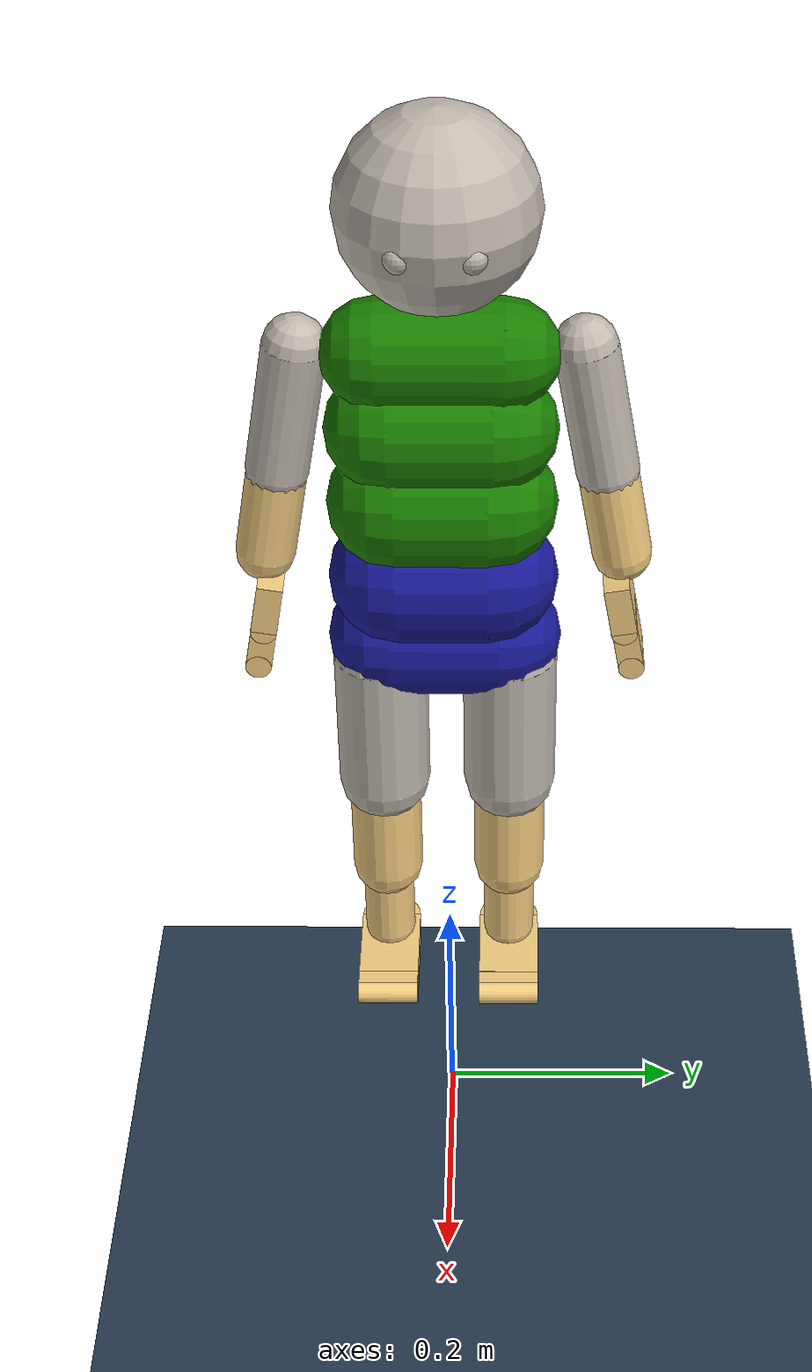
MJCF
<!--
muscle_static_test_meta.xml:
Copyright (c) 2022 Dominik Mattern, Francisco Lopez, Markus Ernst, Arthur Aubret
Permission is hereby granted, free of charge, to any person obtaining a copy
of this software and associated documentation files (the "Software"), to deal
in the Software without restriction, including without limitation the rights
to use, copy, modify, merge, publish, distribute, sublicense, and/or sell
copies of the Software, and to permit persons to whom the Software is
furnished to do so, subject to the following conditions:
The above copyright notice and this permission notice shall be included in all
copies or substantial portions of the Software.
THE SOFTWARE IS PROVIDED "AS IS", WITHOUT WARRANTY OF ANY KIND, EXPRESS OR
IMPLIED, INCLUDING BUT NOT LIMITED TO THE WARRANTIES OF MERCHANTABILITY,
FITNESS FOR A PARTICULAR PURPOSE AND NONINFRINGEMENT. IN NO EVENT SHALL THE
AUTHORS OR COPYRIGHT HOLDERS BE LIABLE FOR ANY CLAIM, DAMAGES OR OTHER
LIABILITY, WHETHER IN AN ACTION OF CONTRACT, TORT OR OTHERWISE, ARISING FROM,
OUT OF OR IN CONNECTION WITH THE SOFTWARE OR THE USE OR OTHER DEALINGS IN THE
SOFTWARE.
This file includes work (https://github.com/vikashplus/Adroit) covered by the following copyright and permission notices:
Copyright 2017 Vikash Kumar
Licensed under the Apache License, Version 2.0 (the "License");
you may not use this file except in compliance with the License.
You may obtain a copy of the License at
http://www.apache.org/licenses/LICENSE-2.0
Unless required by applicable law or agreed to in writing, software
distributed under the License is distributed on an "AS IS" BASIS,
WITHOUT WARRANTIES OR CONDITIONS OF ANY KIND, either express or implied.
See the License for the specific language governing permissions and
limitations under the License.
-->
<mujoco model="MIMo">

    <compiler inertiafromgeom="true" angle="degree"/>

    <option timestep="0.005" gravity="0 0 0" iterations="50" tolerance="1e-10" solver="Newton" jacobian="dense" cone="elliptic" impratio="1.0"/>

    <size nconmax="1000" njmax="5000" nstack="10000000" />

    <visual>
        <map force="0.1" zfar="30" znear="0.005"/>
        <rgba haze="0.15 0.25 0.35 1"/>
        <quality shadowsize="4096"/>
        <global offwidth="800" offheight="800"/>
    </visual>

    <default>
        <geom material="matgeom" condim="3" solimp="0.95 0.99 0.001 0.5 1" solref="0.005 1"/>
    </default>

    <asset>
        <texture type="skybox" builtin="gradient" rgb1="0.3 0.5 0.7" rgb2="0 0 0" width="512" height="512"/>

        <texture name="texplane" type="2d" builtin="checker" rgb1=".2 .3 .4" rgb2=".1 0.15 0.2" width="512" height="512" mark="cross" markrgb=".8 .8 .8"/>

        <texture name="texgeom" type="cube" builtin="flat" mark="cross" width="127" height="1278"
            rgb1="0.8 0.6 0.4" rgb2="0.8 0.6 0.4" markrgb="1 1 1" random="0.01"/>

        <material name="matplane" reflectance="0.3" texture="texplane" texrepeat="1 1" texuniform="true"/>

        <material name="matgeom" texture="texgeom" texuniform="true" rgba="0.8 0.6 .4 1"/>

		<material name="matmocap" texture="texgeom" texuniform="true" rgba="0.5 0 0.5 0.5"/>

    </asset>

	<!-- Import everything except the kinematic tree -->
	<include file="muscle_static_test_meta.xml"></include>

    <worldbody>
        <geom name="floor" pos="0 0 0" size="0 0 .25" type="plane" material="matplane" condim="3"/>

        <light directional="false" diffuse=".4 .4 .4" specular="0 0 0" pos="0 0 10" dir="0 0 -1" castshadow="false"/>
        <light mode="targetbodycom" target="upper_body" directional="false" diffuse=".8 .8 .8" specular="0.3 0.3 0.3" pos="0 0 5.0" dir="0 0 -1"/>

		<!-- The location and orientation of the base model can be set using this body -->
		<body name="mimo_location" pos="0 0 .5" euler="0 0 0">
			<freejoint/>
			<include file="mimo/MIMo_model.xml"></include> <!-- Import the actual model-->
		</body>

    </worldbody>

    <equality>
		<weld body1="hip"/>
	</equality>

</mujoco>

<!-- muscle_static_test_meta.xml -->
<mujoco model="MIMo">

	<size nuser_actuator="3" />

	<default>
		<default class="mimo">
        	<joint limited="true" damping=".1" stiffness=".1" armature="0.001" solimplimit="0.98 0.99 0.001 .5 1" solreflimit="0.02 1"/>
        	<geom condim="3" material="skin" friction="1 0.005 0.0002" solimp="0.95 0.99 0.001 0.5 1" solref="0.005 1"/>
        	<motor ctrlrange="-1 1" ctrllimited="true" forcelimited="true"/>
		</default>
    </default>

    <asset>
		<texture name="tex_head_default" type="cube" fileright="tex/head_front.png" fileleft="tex/head_back.png" fileup="tex/head_left.png" filedown="tex/head_right.png" filefront="tex/head_top.png" rgb1="0.95 .8 .5"/>
		<texture name="tex_head_happy" type="cube" fileright="tex/head_front_happy.png" fileleft="tex/head_back.png" fileup="tex/head_left.png" filedown="tex/head_right.png" filefront="tex/head_top.png" rgb1="0.95 .8 .5"/>
		<texture name="tex_head_sad" type="cube" fileright="tex/head_front_sad.png" fileleft="tex/head_back.png" fileup="tex/head_left.png" filedown="tex/head_right.png" filefront="tex/head_top.png" rgb1="0.95 .8 .5"/>
		<texture name="tex_head_surprised" type="cube" fileright="tex/head_front_surprised.png" fileleft="tex/head_back.png" fileup="tex/head_left.png" filedown="tex/head_right.png" filefront="tex/head_top.png" rgb1="0.95 .8 .5"/>
		<texture name="tex_head_angry" type="cube" fileright="tex/head_front_angry.png" fileleft="tex/head_back.png" fileup="tex/head_left.png" filedown="tex/head_right.png" filefront="tex/head_top.png" rgb1="0.95 .8 .5"/>
		<texture name="tex_head_disgusted" type="cube" fileright="tex/head_front_disgusted.png" fileleft="tex/head_back.png" fileup="tex/head_left.png" filedown="tex/head_right.png" filefront="tex/head_top.png" rgb1="0.95 .8 .5"/>
		<texture name="tex_head_scared" type="cube" fileright="tex/head_front_scared.png" fileleft="tex/head_back.png" fileup="tex/head_left.png" filedown="tex/head_right.png" filefront="tex/head_top.png" rgb1="0.95 .8 .5"/>
		<texture name="tex_top_sleeve" type="cube" fileright="tex/sleeve_right.png" fileleft="tex/sleeve_left.png" fileup="tex/sleeve_up.png" filedown="tex/sleeve_down.png" filefront="tex/sleeve_front.png" fileback="tex/sleeve_back.png" rgb1="0.95 .8 .5"/>
		<texture name="tex_pants_leg" type="cube" fileright="tex/leg_right.png" fileleft="tex/leg_left.png" fileup="tex/leg_up.png" filedown="tex/leg_down.png" filefront="tex/leg_front.png" fileback="tex/leg_back.png" rgb1="0.95 .8 .5"/>
		<texture name="tex_eye_left" type="cube" fileright="tex/eye_pupil_left.png" rgb1="1 1 1"/>
		<texture name="tex_eye_right" type="cube" fileright="tex/eye_pupil_right.png" rgb1="1 1 1"/>

		<material name="skin" rgba="0.95 0.8 0.5 1" specular=".15" shininess=".7"/>
		<material name="buttons" rgba=".05 .05 .05 1" specular=".9" shininess=".9"/>
		<material name="head" texture="tex_head_default" texuniform="true" specular=".0" shininess=".0"/>
		<material name="top_up" rgba=".1 .5 0.0 1" specular=".0" shininess=".0"/>
		<material name="top_middle" rgba=".1 .5 0.0 1" specular=".0" shininess=".0"/>
		<material name="top_down" rgba=".1 .5 0.0 1" specular=".0" shininess=".0"/>
		<material name="top_sleeve" texture="tex_top_sleeve" texuniform="true" specular=".0" shininess=".0"/>
		<material name="pants_up" rgba="0.1 0.1 0.6 1" specular=".0" shininess=".0"/>
		<material name="pants_down" rgba="0.1 0.1 0.6 1" specular=".0" shininess=".0"/>
		<material name="pants_leg" texture="tex_pants_leg" texuniform="true" specular=".0" shininess=".0"/>
		<material name="eye_left" texture="tex_eye_left" texuniform="true" specular=".0" shininess=".0"/>
		<material name="eye_right" texture="tex_eye_right" texuniform="true" specular=".0" shininess=".0"/>
    </asset>

	<!-- Internal contacts should not have friction to reduce "getting stuck" on ourselves-->
	<contact>
		<pair geom1="lb" geom2="ub1" condim="1"/>
		<exclude body1="left_eye" body2="upper_body"/>
		<exclude body1="right_eye" body2="upper_body"/>
	</contact>

	<tendon>
		<fixed class="mimo" name="hip_bend" limited="true" range="-.01 .01">
			<joint joint="robot:hip_bend1" coef="1"/>
			<joint joint="robot:hip_bend2" coef="-1"/>
		</fixed>
		<fixed class="mimo" name="hip_rotation" limited="true" range="-.01 .01">
			<joint joint="robot:hip_rot1" coef="1"/>
			<joint joint="robot:hip_rot2" coef="-1"/>
		</fixed>
		<fixed class="mimo" name="hip_lean" limited="true" range="-.01 .01">
			<joint joint="robot:hip_lean1" coef="1"/>
			<joint joint="robot:hip_lean2" coef="-.5"/>
		</fixed>
		<fixed class="mimo" name="head_limits1" limited="true" range="-2.1 2.1">
			<joint joint="robot:head_swivel" coef="1"/>
			<joint joint="robot:head_tilt_side" coef="1"/>
		</fixed>
		<fixed class="mimo" name="head_limits2" limited="true" range="-2.1 2.1">
			<joint joint="robot:head_tilt" coef="1"/>
			<joint joint="robot:head_tilt_side" coef="1"/>
		</fixed>
		<fixed class="mimo" name="head_limits3" limited="true" range="-2.1 2.1">
			<joint joint="robot:head_swivel" coef="1"/>
			<joint joint="robot:head_tilt" coef="1"/>
		</fixed>
		<fixed class="mimo" name="head_limits1_sym" limited="true" range="-2.1 2.1">
			<joint joint="robot:head_swivel" coef="1"/>
			<joint joint="robot:head_tilt_side" coef="-1"/>
		</fixed>
		<fixed class="mimo" name="head_limits2_sym" limited="true" range="-2.1 2.1">
			<joint joint="robot:head_tilt" coef="1"/>
			<joint joint="robot:head_tilt_side" coef="-1"/>
		</fixed>
		<fixed class="mimo" name="head_limits3_sym" limited="true" range="-2.1 2.1">
			<joint joint="robot:head_swivel" coef="1"/>
			<joint joint="robot:head_tilt" coef="-1"/>
		</fixed>
	</tendon>

	<sensor>
		<accelerometer name="vestibular_acc" site="vestibular"/>
		<gyro name="vestibular_gyro" site="vestibular"/>

		<torque name="proprio:neck" site="torque_neck"/>
		<torque name="proprio:left_eye" site="torque_left_eye"/>
		<torque name="proprio:right_eye" site="torque_right_eye"/>

		<torque name="proprio:trunk_upper" site="torque_ub"/>
		<torque name="proprio:trunk_lower" site="torque_lb"/>

		<torque name="proprio:right_shoulder" site="torque_right_shoulder"/>
		<torque name="proprio:right_elbow" site="torque_right_elbow"/>
		<torque name="proprio:right_wrist" site="torque_right_wrist"/>
		<torque name="proprio:right_fingers" site="torque_right_fingers"/>

		<torque name="proprio:left_shoulder" site="torque_left_shoulder"/>
		<torque name="proprio:left_elbow" site="torque_left_elbow"/>
		<torque name="proprio:left_wrist" site="torque_left_wrist"/>
		<torque name="proprio:left_fingers" site="torque_left_fingers"/>

		<torque name="proprio:right_hip" site="torque_right_hip"/>
		<torque name="proprio:right_knee" site="torque_right_knee"/>
		<torque name="proprio:right_ankle" site="torque_right_ankle"/>
		<torque name="proprio:right_toes" site="torque_right_toes"/>

		<torque name="proprio:left_hip" site="torque_left_hip"/>
		<torque name="proprio:left_knee" site="torque_left_knee"/>
		<torque name="proprio:left_ankle" site="torque_left_ankle"/>
		<torque name="proprio:left_toes" site="torque_left_toes"/>
	</sensor>

	<actuator>
		<motor class="mimo"	name="act:hip_bend" 						joint="robot:hip_bend1" 				gear="10.58" 		forcerange="-1 .765"	user=".8574 32.93 22.97"/>
		<motor class="mimo"	name="act:hip_twist" 						joint="robot:hip_rot1" 					gear="3.63" 		forcerange="-1 1"		user="1.699 8.136 8.136"/>
		<motor class="mimo"	name="act:hip_lean" 						joint="robot:hip_lean1" 				gear="7.25" 		forcerange="-1 1"		user="1.278 1.264 1.264"/>

		<motor class="mimo"	name="act:head_swivel" 						joint="robot:head_swivel" 				gear="1.8" 			forcerange="-1 1"		user=".6665 24.87 24.87"/>
		<motor class="mimo"	name="act:head_tilt" 						joint="robot:head_tilt" 				gear="3.3" 			forcerange="-1 .55"		user=".9338 31.39 16.86"/>
		<motor class="mimo"	name="act:head_tilt_side" 					joint="robot:head_tilt_side" 			gear="1.8" 			forcerange="-1 1"		user="1.068 15.69 15.69"/>

		<motor class="mimo" name="act:left_eye_horizontal" 				joint="robot:left_eye_horizontal" 		gear=".0054" 		forcerange="-1 1"		user="5.110 .03025 .03025"/>
		<motor class="mimo" name="act:left_eye_vertical" 				joint="robot:left_eye_vertical" 		gear=".0054" 		forcerange="-1 1"		user="6.179 .02619 .02771"/>
		<motor class="mimo" name="act:left_eye_torsional" 				joint="robot:left_eye_torsional" 		gear=".0037" 		forcerange="-1 1"		user="25.03 .003686 .003686"/>
		<motor class="mimo" name="act:right_eye_horizontal" 			joint="robot:right_eye_horizontal" 		gear=".0054" 		forcerange="-1 1"		user="5.110 .03025 .03025"/>
		<motor class="mimo" name="act:right_eye_vertical" 				joint="robot:right_eye_vertical" 		gear=".0054" 		forcerange="-1 1"		user="6.179 .02619 .02771"/>
		<motor class="mimo" name="act:right_eye_torsional" 				joint="robot:right_eye_torsional" 		gear=".0037" 		forcerange="-1 1"		user="25.03 .003686 .003686"/>

		<motor class="mimo"	name="act:right_shoulder_horizontal" 		joint="robot:right_shoulder_horizontal" gear="1.8" 			forcerange="-1 1"		user="1.811 18.80 15.30"/>
		<motor class="mimo"	name="act:right_shoulder_abduction" 		joint="robot:right_shoulder_ad_ab" 		gear="4" 			forcerange="-.6875 1"	user=".8793 44.17 69.23"/>
		<motor class="mimo"	name="act:right_shoulder_internal" 			joint="robot:right_shoulder_rotation" 	gear="2.5" 			forcerange="-1 .64"		user="1.498 25.09 17.10"/>
		<motor class="mimo"	name="act:right_elbow" 						joint="robot:right_elbow" 				gear="3.6" 			forcerange="-1 .83"		user="1.566 35.43 27.04"/>
		<motor class="mimo"	name="act:right_wrist_rotation" 			joint="robot:right_hand1" 				gear=".7"			forcerange="-1 1"		user="1.513 7.842 7.842"/>
		<motor class="mimo"	name="act:right_wrist_flexion" 				joint="robot:right_hand2" 				gear="1.24"			forcerange="-1 .57"		user="1.455 13.66 7.874"/>
		<motor class="mimo"	name="act:right_wrist_ulnar" 				joint="robot:right_hand3" 				gear=".95"			forcerange="-.87 1"		user="2.254 5.155 6.021"/>
		<motor class="mimo" name="act:right_fingers" 					joint="robot:right_fingers" 			gear=".69"			forcerange="-1 .33" 	user="3.019 6.854 2.551"/>

		<motor class="mimo"	name="act:left_shoulder_horizontal" 		joint="robot:left_shoulder_horizontal" 	gear="1.8" 			forcerange="-1 1"		user="1.811 18.80 15.30"/>
		<motor class="mimo"	name="act:left_shoulder_abduction" 			joint="robot:left_shoulder_ad_ab" 		gear="4" 			forcerange="-.6875 1"	user=".8793 44.17 69.23"/>
		<motor class="mimo"	name="act:left_shoulder_internal" 			joint="robot:left_shoulder_rotation" 	gear="2.5" 			forcerange="-1 .64"		user="1.498 25.09 17.10"/>
		<motor class="mimo"	name="act:left_elbow" 						joint="robot:left_elbow" 				gear="3.6" 			forcerange="-1 .83"		user="1.566 35.43 27.04"/>
		<motor class="mimo"	name="act:left_wrist_rotation" 				joint="robot:left_hand1"  				gear=".7"			forcerange="-1 1"		user="1.513 7.842 7.842"/>
		<motor class="mimo"	name="act:left_wrist_flexion" 				joint="robot:left_hand2"  				gear="1.24"			forcerange="-1 .57"		user="1.455 13.66 7.874"/>
		<motor class="mimo"	name="act:left_wrist_ulnar" 				joint="robot:left_hand3"  				gear=".95"			forcerange="-.87 1"		user="2.254 5.155 6.021"/>
		<motor class="mimo" name="act:left_fingers" 					joint="robot:left_fingers" 				gear=".69" 			forcerange="-1 .33" 	user="3.019 6.854 2.551"/>

		<motor class="mimo"	name="act:right_hip_flex" 					joint="robot:right_hip1" 				gear="8" 			forcerange="-1 1"		user="1.083 71.25 92.49"/>
		<motor class="mimo"	name="act:right_hip_abduction" 				joint="robot:right_hip2" 				gear="6.24" 		forcerange="-1 1"		user="1.488 24.81 29.20"/>
		<motor class="mimo"	name="act:right_hip_rotation" 				joint="robot:right_hip3" 				gear="3.54" 		forcerange="-.75 1"		user="1.860 12.32 15.78"/>
		<motor class="mimo"	name="act:right_knee" 						joint="robot:right_knee" 				gear="10" 			forcerange="-.65 1"		user="1.450 63.16 89.27"/>
		<motor class="mimo"	name="act:right_foot_flexion" 				joint="robot:right_foot1" 				gear="3.78"			forcerange="-1 .5"		user="1.430 21.34 11.87"/>
		<motor class="mimo"	name="act:right_foot_inversion" 			joint="robot:right_foot2" 				gear="1.16"			forcerange="-.91 1"		user="1.988 4.184 4.645"/>
		<motor class="mimo"	name="act:right_foot_rotation" 				joint="robot:right_foot3"	 			gear="1.2"			forcerange="-1 1"		user="2.688 3.868 3.625"/>
		<motor class="mimo"	name="act:right_toes" 						joint="robot:right_toes"	 			gear=".33"			forcerange="-1 .3" 		user="1.290 2.947 .8440"/>

		<motor class="mimo"	name="act:left_hip_flex" 					joint="robot:left_hip1" 				gear="8" 			forcerange="-1 1"		user="1.083 71.25 92.49"/>
		<motor class="mimo"	name="act:left_hip_abduction" 				joint="robot:left_hip2" 				gear="6.24" 		forcerange="-1 1"		user="1.488 24.81 29.20"/>
		<motor class="mimo"	name="act:left_hip_rotation" 				joint="robot:left_hip3"					gear="3.54" 		forcerange="-.75 1"		user="1.860 12.32 15.78"/>
		<motor class="mimo"	name="act:left_knee" 						joint="robot:left_knee" 				gear="10" 			forcerange="-.65 1"		user="1.450 63.16 89.27"/>
		<motor class="mimo"	name="act:left_foot_flexion" 				joint="robot:left_foot1" 				gear="3.78"			forcerange="-1 .5"		user="1.430 21.34 11.87"/>
		<motor class="mimo"	name="act:left_foot_inversion" 				joint="robot:left_foot2" 				gear="1.16"			forcerange="-.91 1"		user="1.988 4.184 4.645"/>
		<motor class="mimo"	name="act:left_foot_rotation" 				joint="robot:left_foot3" 				gear="1.2"			forcerange="-1 1"		user="2.688 3.868 3.625"/>
		<motor class="mimo"	name="act:left_toes" 						joint="robot:left_toes"	 				gear=".33"			forcerange="-1 .3" 		user="1.290 2.947 .8440"/>
	</actuator>

	<equality> <!-- These contraints are used for joint locking during runtime -->
		<joint name="robot:hip_lean1" 					joint1="robot:hip_lean1" active="true" polycoef="0 1 0 0 0" solimp="0.95 0.99999 0.001 0.5 2"/>
		<joint name="robot:hip_rot1" 					joint1="robot:hip_rot1" active="true" polycoef="0 1 0 0 0" solimp="0.95 0.99999 0.001 0.5 2"/>
		<joint name="robot:hip_bend1" 					joint1="robot:hip_bend1" active="true" polycoef="0 1 0 0 0" solimp="0.95 0.99999 0.001 0.5 2"/>
		<joint name="robot:hip_lean2" 					joint1="robot:hip_lean2" active="true" polycoef="0 1 0 0 0" solimp="0.95 0.99999 0.001 0.5 2"/>
		<joint name="robot:hip_rot2" 					joint1="robot:hip_rot2" active="true" polycoef="0 1 0 0 0" solimp="0.95 0.99999 0.001 0.5 2"/>
		<joint name="robot:hip_bend2" 					joint1="robot:hip_bend2" active="true" polycoef="0 1 0 0 0" solimp="0.95 0.99999 0.001 0.5 2"/>
		<joint name="robot:head_swivel" 				joint1="robot:head_swivel" active="true" polycoef="0 1 0 0 0" solimp="0.95 0.99999 0.001 0.5 2"/>
		<joint name="robot:head_tilt" 					joint1="robot:head_tilt" active="true" polycoef="0 1 0 0 0" solimp="0.95 0.99999 0.001 0.5 2"/>
		<joint name="robot:head_tilt_side" 				joint1="robot:head_tilt_side" active="true" polycoef="0 1 0 0 0" solimp="0.95 0.99999 0.001 0.5 2"/>
		<joint name="robot:left_eye_horizontal" 		joint1="robot:left_eye_horizontal" active="true" polycoef="0 1 0 0 0" solimp="0.9 0.99999 0.001 0.5 2"/>
		<joint name="robot:left_eye_vertical" 			joint1="robot:left_eye_vertical" active="true" polycoef="0 1 0 0 0" solimp="0.9 0.99999 0.001 0.5 2"/>
		<joint name="robot:left_eye_torsional" 			joint1="robot:left_eye_torsional" active="true" polycoef="0 1 0 0 0" solimp="0.9 0.99999 0.001 0.5 2"/>
		<joint name="robot:right_eye_horizontal" 		joint1="robot:right_eye_horizontal" active="true" polycoef="0 1 0 0 0" solimp="0.9 0.99999 0.001 0.5 2"/>
		<joint name="robot:right_eye_vertical" 			joint1="robot:right_eye_vertical" active="true" polycoef="0 1 0 0 0" solimp="0.9 0.99999 0.001 0.5 2"/>
		<joint name="robot:right_eye_torsional" 		joint1="robot:right_eye_torsional" active="true" polycoef="0 1 0 0 0" solimp="0.9 0.99999 0.001 0.5 2"/>

		<joint name="robot:right_shoulder_horizontal" 	joint1="robot:right_shoulder_horizontal" active="true" polycoef="0 1 0 0 0" solimp="0.95 0.99999 0.001 0.5 2"/>
		<joint name="robot:right_shoulder_ad_ab" 		joint1="robot:right_shoulder_ad_ab" active="true" polycoef="1.4 1 0 0 0" solimp="0.95 0.99999 0.001 0.5 2"/>
		<joint name="robot:right_shoulder_rotation" 	joint1="robot:right_shoulder_rotation" active="true" polycoef="0 1 0 0 0" solimp="0.95 0.99999 0.001 0.5 2"/>
		<joint name="robot:right_elbow" 				joint1="robot:right_elbow" active="true" polycoef="-1.57 1 0 0 0" solimp="0.95 0.99999 0.001 0.5 2"/>
		<joint name="robot:right_hand1" 				joint1="robot:right_hand1" active="true" polycoef="0 1 0 0 0" solimp="0.95 0.99999 0.001 0.5 2"/>
		<joint name="robot:right_hand2" 				joint1="robot:right_hand2" active="true" polycoef="0 1 0 0 0" solimp="0.95 0.99999 0.001 0.5 2"/>
		<joint name="robot:right_hand3" 				joint1="robot:right_hand3" active="true" polycoef="0 1 0 0 0" solimp="0.95 0.99999 0.001 0.5 2"/>
		<joint name="robot:right_fingers" 				joint1="robot:right_fingers" active="true" polycoef="-.785 1 0 0 0" solimp="0.95 0.99999 0.001 0.5 2"/>

		<joint name="robot:left_shoulder_horizontal" 	joint1="robot:left_shoulder_horizontal" active="true" polycoef="0 1 0 0 0" solimp="0.95 0.99999 0.001 0.5 2"/>
		<joint name="robot:left_shoulder_ad_ab" 		joint1="robot:left_shoulder_ad_ab" active="true" polycoef="1.4 1 0 0 0" solimp="0.95 0.99999 0.001 0.5 2"/>
		<joint name="robot:left_shoulder_rotation" 		joint1="robot:left_shoulder_rotation" active="true" polycoef="0 1 0 0 0" solimp="0.95 0.99999 0.001 0.5 2"/>
		<joint name="robot:left_elbow" 					joint1="robot:left_elbow" active="true" polycoef="-1.57 1 0 0 0" solimp="0.95 0.99999 0.001 0.5 2"/>
		<joint name="robot:left_hand1" 					joint1="robot:left_hand1" active="true" polycoef="0 1 0 0 0" solimp="0.95 0.99999 0.001 0.5 2"/>
		<joint name="robot:left_hand2" 					joint1="robot:left_hand2" active="true" polycoef="0 1 0 0 0" solimp="0.95 0.99999 0.001 0.5 2"/>
		<joint name="robot:left_hand3" 					joint1="robot:left_hand3" active="true" polycoef="0 1 0 0 0" solimp="0.95 0.99999 0.001 0.5 2"/>
		<joint name="robot:left_fingers" 				joint1="robot:left_fingers" active="true" polycoef="-.785 1 0 0 0" solimp="0.95 0.99999 0.001 0.5 2"/>

		<joint name="robot:right_hip1" 					joint1="robot:right_hip1" active="true" polycoef="0 1 0 0 0" solimp="0.95 0.99999 0.001 0.5 2"/>
		<joint name="robot:right_hip2" 					joint1="robot:right_hip2" active="true" polycoef="0 1 0 0 0" solimp="0.95 0.99999 0.001 0.5 2"/>
		<joint name="robot:right_hip3" 					joint1="robot:right_hip3" active="true" polycoef="0 1 0 0 0" solimp="0.95 0.99999 0.001 0.5 2"/>
		<joint name="robot:right_knee" 					joint1="robot:right_knee" active="true" polycoef="-1.57 1 0 0 0" solimp="0.95 0.99999 0.001 0.5 2"/>
		<joint name="robot:right_foot1" 				joint1="robot:right_foot1" active="true" polycoef="0 1 0 0 0" solimp="0.95 0.99999 0.001 0.5 2"/>
		<joint name="robot:right_foot2" 				joint1="robot:right_foot2" active="true" polycoef="0 1 0 0 0" solimp="0.95 0.99999 0.001 0.5 2"/>
		<joint name="robot:right_foot3" 				joint1="robot:right_foot3" active="true" polycoef="0 1 0 0 0" solimp="0.95 0.99999 0.001 0.5 2"/>
		<joint name="robot:right_toes" 					joint1="robot:right_toes"  active="true" polycoef="0 1 0 0 0" solimp="0.95 0.99999 0.001 0.5 2"/>

		<joint name="robot:left_hip1" 					joint1="robot:left_hip1" active="true" polycoef="0 1 0 0 0" solimp="0.95 0.99999 0.001 0.5 2"/>
		<joint name="robot:left_hip2" 					joint1="robot:left_hip2" active="true" polycoef="0 1 0 0 0" solimp="0.95 0.99999 0.001 0.5 2"/>
		<joint name="robot:left_hip3" 					joint1="robot:left_hip3" active="true" polycoef="0 1 0 0 0" solimp="0.95 0.99999 0.001 0.5 2"/>
		<joint name="robot:left_knee" 					joint1="robot:left_knee" active="true" polycoef="-1.57 1 0 0 0" solimp="0.95 0.99999 0.001 0.5 2"/>
		<joint name="robot:left_foot1" 					joint1="robot:left_foot1" active="true" polycoef="0 1 0 0 0" solimp="0.95 0.99999 0.001 0.5 2"/>
		<joint name="robot:left_foot2" 					joint1="robot:left_foot2" active="true" polycoef="0 1 0 0 0" solimp="0.95 0.99999 0.001 0.5 2"/>
		<joint name="robot:left_foot3" 					joint1="robot:left_foot3" active="true" polycoef="0 1 0 0 0" solimp="0.95 0.99999 0.001 0.5 2"/>
		<joint name="robot:left_toes" 					joint1="robot:left_toes" active="true" polycoef="0 1 0 0 0" solimp="0.95 0.99999 0.001 0.5 2"/>
	</equality>

</mujoco>

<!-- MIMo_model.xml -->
<mujoco model="MIMo">

	<body childclass="mimo" name="hip" pos="0 0 0">
		<!-- Whole body height is 77.8 cm -->
		<geom name="lb" type="capsule" size=".048 .043" mass="1.1584" material="pants_down" pos="-.002 0 0.005" euler="90 0 0"/>
		<site name="lowerBody_center" type="sphere" size=".01 .01 .01" pos="0 0 0"/>
		<body name="lower_body" pos="0.002 0 0.076">
			<joint name="robot:hip_lean1" type="hinge" pos="0 0 -.05" axis="1 0 0" range="-14 14" stiffness="3.38" damping="0.77" frictionloss=".049" armature="0.01"/>
			<joint name="robot:hip_rot1" type="hinge" pos="0 0 -.05" axis="0 0 1" range="-18 18" stiffness="1.45" damping="0.29" frictionloss=".018" armature="0.01"/>
			<joint name="robot:hip_bend1" type="hinge" pos="0 0 -0.05" axis="0 1 0" range="-17 30.5" stiffness="2.20" damping="0.84" frictionloss="0.040" armature="0.01"/>
			<site name="torque_lb" type="sphere" size="0.01" pos="0 0 0" group="4"/>
			<geom name="cb" type="capsule" size=".053 .035" mass="1.3245" material="pants_up" contype="0" pos="0.005 0 -.008" euler="90 0 0"/>

			<body name="upper_body" pos="-.002 0 0.091">
				<joint name="robot:hip_lean2" type="hinge" pos="0 0 -.05" axis="1 0 0" range="-27 27" stiffness="1.69" damping="0.38" frictionloss=".024" armature="0.01"/>
				<joint name="robot:hip_rot2" type="hinge" pos="0 0 -.05" axis="0 0 1" range="-18 18" stiffness="1.45" damping="0.29" frictionloss=".018" armature="0.01"/>
				<joint name="robot:hip_bend2" type="hinge" pos="0 0 -.05" axis="0 1 0" range="-17 30.5" stiffness="2.20" damping="0.84" frictionloss="0.040" armature="0.01"/>
				<site name="torque_ub" type="sphere" size="0.01" pos="0 0 0" group="4"/>
				<geom name="ub1" type="capsule" size=".052 .035" mass="1.0882" material="top_down" pos="0.007 0 -.032" euler="90 0 0"/>
				<geom name="ub2" type="capsule" size=".048 .039" mass="0.9499" material="top_middle" pos="0.004 0 0.03" euler="90 0 0"/>
				<geom name="neck" type="capsule" size="1e-6 1e-6" mass="0" material="skin" pos="0 0 0" euler="0 0 0"/>

				<body name="chest" pos="0 0 0.09">
					<joint name="robot:chest_lean" type="hinge" pos="0 0 0" axis="1 0 0" range="-9 9" stiffness="1.69" damping="0.38" frictionloss=".024" armature="0.01"/>
					<joint name="robot:chest_rot" type="hinge" pos="0 0 0" axis="0 0 1" range="-18 18" stiffness="1.45" damping="0.29" frictionloss=".018" armature="0.01"/>
					<site name="torque_chest" type="sphere" size="0.01" pos="0 0 0" group="4"/>
					<geom name="ub3" type="capsule" size=".041 .047" mass="0.7217" material="top_up" pos="0 0 0" euler="90 0 0"/>

					<body name="right_upper_arm" pos="-.005 -0.105 .003" euler="170 0 0">
						<!-- Arm length is 31.36cm -->
						<joint name="robot:right_shoulder_horizontal" type="hinge" pos="0 -.024 0" axis="0 1 -4" range="-28 118" stiffness=".09" damping=".05" frictionloss=".0009" armature="0.004"/>
						<joint name="robot:right_shoulder_ad_ab" type="hinge" pos="0 0 0" axis="-1 0 0" range="-84 183" stiffness=".11" damping=".10" frictionloss=".0014" armature="0.004"/>
						<joint name="robot:right_shoulder_rotation" type="hinge" pos="0 0 0" axis="0 0 -1" range="-99 67" stiffness=".12" damping=".07" frictionloss=".0008" armature="0.004"/>
						<site name="torque_right_shoulder" type="sphere" size="0.01" pos="0 0 0" group="4"/>
						<geom name="right_uarm1" type="capsule" material="top_sleeve" size="0.024 0.0536" mass=".2684" pos="0 0 .0536" euler="0 0 0"/>
						<body name="right_lower_arm" pos="0 0 .1076" euler="0 0 0">
							<joint name="robot:right_elbow" type="hinge" pos="0 0 0" axis="0 -1 0" springref="-20" range="-146 5" stiffness=".13" damping=".11" frictionloss=".030" armature="0.002"/>
							<site name="torque_right_elbow" type="sphere" size="0.01" pos="0 0 0" group="4"/>
							<geom name="right_larm" type="capsule" size=".023 0.037" mass=".1853" pos="0 0 .037"/>
							<body name="right_hand" pos="0 -.007 .087" euler="0 0 0"> <!-- Hand length is 9.3, Palm length is 5.16 -->
								<joint name="robot:right_hand1" type="hinge" pos="0 .007 0" axis="0 0 -1" springref="-20" range="-90 90" stiffness=".22" damping=".03" frictionloss=".007" armature="0.001"/>
								<joint name="robot:right_hand2" type="hinge" pos="0 0 0" axis="-1 0 0" range="-92 86" stiffness=".33" damping=".11" frictionloss=".007" armature="0.001"/>
								<joint name="robot:right_hand3" type="hinge" pos="0 0 0" axis="0 1 0" range="-53 48" stiffness=".38" damping=".11" frictionloss=".007" armature="0.001"/>
								<site name="torque_right_wrist" type="sphere" size="0.01" pos="0 0 0" group="4"/>
								<geom name="geom:right_hand1" type="box" size=".0281 .01 .0208" mass=".04315" pos=".005 0 .0208"/>
								<geom name="geom:right_hand2" type="cylinder" size=".0102 .0278" mass=".01602" pos=".005 0 .0416" euler="0 90 0"/>
								<body name="right_fingers" pos="0 0 .0416"> <!-- Finger length is 5.14 cm, 1 cm overlap between palm and fingers -->
									<joint name="robot:right_fingers" type="hinge" pos="0 0 0" axis="-1 0 0" springref="-40" range="-160 8" stiffness=".017" damping=".018" frictionloss=".0023" armature="0.0001"/>
									<site name="torque_right_fingers" type="sphere" size="0.01" pos="0 0 0" group="4"/>
									<geom name="geom:right_fingers1" type="box" size=".0228 .01 .0207" mass=".03494" pos="0 0 .0207" friction="5 0.02 0.01"/>
									<geom name="geom:right_fingers2" type="cylinder" size=".0102 .023" mass=".01323" pos="0 0 .0414" euler="0 90 0" friction="5 0.02 0.01"/>
								</body>
							</body>
						</body>
					</body>

					<body name="left_upper_arm" pos="-.005 0.105 .003" euler="-170 0 0">
						<!-- Arm length is 31.36cm -->
						<joint name="robot:left_shoulder_horizontal" type="hinge" pos="0 .024 0" axis="0 1 4" range="-28 118" stiffness=".09" damping=".05" frictionloss=".0009" armature="0.004"/>
						<joint name="robot:left_shoulder_ad_ab" type="hinge" pos="0 0 0" axis="1 0 0" range="-84 183" stiffness=".11" damping=".10" frictionloss=".0014" armature="0.004"/>
						<joint name="robot:left_shoulder_rotation" type="hinge" pos="0 0 0" axis="0 0 1" range="-99 67" stiffness=".12" damping=".07" frictionloss=".0008" armature="0.004"/>
						<site name="torque_left_shoulder" type="sphere" size="0.01" pos="0 0 0" group="4"/>
						<geom name="left_uarm1" type="capsule" material="top_sleeve" size="0.024 0.0536" mass=".2684" pos="0 0 .0536" euler="0 0 0"/>
						<body name="left_lower_arm" pos="0 0 .1076" euler="0 0 0">
							<joint name="robot:left_elbow" type="hinge" pos="0 0 0" axis="0 -1 0" springref="-20" range="-146 5" stiffness=".13" damping=".11" frictionloss=".030" armature="0.002"/>
							<site name="torque_left_elbow" type="sphere" size="0.01" pos="0 0 0" group="4"/>
							<geom name="left_larm" type="capsule" size=".023 0.037" mass=".1853" pos="0 0 .037"/>
							<body name="left_hand" pos="0 .007 .087" euler="0 0 0"> <!-- Hand length is 9.3, Palm length is 5.16 -->
								<joint name="robot:left_hand1" type="hinge" pos="0 .007 0" axis="0 0 1" springref="-20" range="-90 90" stiffness=".22" damping=".03" frictionloss=".007" armature="0.001"/>
								<joint name="robot:left_hand2" type="hinge" pos="0 0 0" axis="1 0 0" range="-92 86" stiffness=".33" damping=".11" frictionloss=".007" armature="0.001"/>
								<joint name="robot:left_hand3" type="hinge" pos="0 0 0" axis="0 1 0" range="-53 48" stiffness=".38" damping=".11" frictionloss=".007" armature="0.001"/>
								<site name="torque_left_wrist" type="sphere" size="0.01" pos="0 0 0" group="4"/>
								<geom name="geom:left_hand1" type="box" size=".0281 .01 .0208" mass=".04315" pos=".005 0 .0208"/>
								<geom name="geom:left_hand2" type="cylinder" size=".0102 .0278" mass=".01602" pos=".005 0 .0416" euler="0 90 0"/>
								<body name="left_fingers" pos="0 0 .0416"> <!-- Finger length is 5.14 cm, 1 cm overlap between palm and fingers -->
									<joint name="robot:left_fingers" type="hinge" pos="0 0 0" axis="1 0 0" springref="-40" range="-160 8" stiffness=".017" damping=".018" frictionloss=".0023" armature="0.0001"/>
									<site name="torque_left_fingers" type="sphere" size="0.01" pos="0 0 0" group="4"/>
									<geom name="geom:left_fingers1" type="box" size=".0228 .01 .0207" mass=".03494" pos="0 0 .0207" friction="5 0.02 0.01"/>
									<geom name="geom:left_fingers2" type="cylinder" size=".0102 .023" mass=".01323" pos="0 0 .0414" euler="0 90 0" friction="5 0.02 0.01"/>
								</body>
							</body>
						</body>
					</body>
				</body>
				<body name="head" pos="0 0 .135">
					<geom name="head" type="sphere" size=".0735" mass="1.7748" material="head" pos="0.01 0 0.0735"/>
					<site name="vestibular" type="sphere" size="0.01" pos="0.01 0 0.0735" group="4"/>
					<site name="torque_neck" type="sphere" size="0.01" pos="0 0 0" group="4"/>
					<joint name="robot:head_swivel" type="hinge" pos="0 0 0" axis="0 0 1" range="-111 111" stiffness=".23" damping=".29" frictionloss=".018" armature="0.005"/>
					<joint name="robot:head_tilt" type="hinge" pos="0 0 0.0123" axis="0 1 0" range="-70 81" stiffness=".45" damping=".53" frictionloss=".018" armature="0.005"/>
					<joint name="robot:head_tilt_side" type="hinge" pos="0 0 0.0245" axis="1 0 0" range="-70 70" stiffness=".37" damping=".29" frictionloss=".018" armature="0.005"/>
					<body name="left_eye" pos=".07 .0245 .067375">
						<site name="torque_left_eye" type="sphere" size="0.01" pos="0 0 0" group="4"/>
						<joint name="robot:left_eye_horizontal" type="hinge" pos="0 0 0" axis="0 0 1" range="-45 45" stiffness=".00065" damping=".00042" frictionloss=".000054" armature=".0002"/>
						<joint name="robot:left_eye_vertical" type="hinge" pos="0 0 0" axis="0 -1 0" range="-47 33" stiffness=".00065" damping=".00042" frictionloss=".000054" armature=".0002"/>
						<joint name="robot:left_eye_torsional" type="hinge" pos="0 0 0" axis="-1 0 0" range="-8 8" stiffness=".00267" damping=".00042" frictionloss=".000037" armature=".0002"/>
						<geom name="geom:left_eye1" type="sphere" material="eye_left" size=".01125" mass=".006275" pos="0 0 0"/>
						<camera name="eye_left" mode="fixed" fovy="60" pos="0.01125 0 0" euler="90 -90 0"/>
					</body>
					<body name="right_eye" pos=".07 -.0245 .067375">
						<site name="torque_right_eye" type="sphere" size="0.01" pos="0 0 0" group="4"/>
						<joint name="robot:right_eye_horizontal" type="hinge" pos="0 0 0" axis="0 0 -1" range="-45 45" stiffness=".00065" damping=".00042" frictionloss=".000054" armature=".0002"/>
						<joint name="robot:right_eye_vertical" type="hinge" pos="0 0 0" axis="0 -1 0" range="-47 33" stiffness=".00065" damping=".00042" frictionloss=".000054" armature=".0002"/>
						<joint name="robot:right_eye_torsional" type="hinge" pos="0 0 0" axis="1 0 0" range="-8 8" stiffness=".00267" damping=".00042" frictionloss=".000037" armature=".0002"/>
						<geom name="geom:right_eye1" type="sphere" material="eye_right" size=".01125" mass=".006275" pos="0 0 0"/>
						<camera name="eye_right" mode="fixed" fovy="60" pos="0.01125 0 0" euler="90 -90 0"/>
					</body>
				</body>
			</body>
		</body>

		<body name="right_upper_leg" pos="0.005 -.051 -.007">
			<!-- leg length is 32.9 cm -->
			<joint name="robot:right_hip1" type="hinge" pos="0 0 0" axis="0 1 0" springref="-10" range="-133 20" stiffness="1.72" damping="1.27" frictionloss=".08" armature=".005"/>
			<joint name="robot:right_hip2" type="hinge" pos="0 0 0" axis="1 0 0" range="-51 17" stiffness="3.51" damping="1.99" frictionloss=".062" armature=".005"/>
			<joint name="robot:right_hip3" type="hinge" pos="0 0 0" axis="0 0 -1" range="-32 41" stiffness="2.16" damping="0.75" frictionloss=".027" armature=".005"/>
			<site name="torque_right_hip" type="sphere" size="0.01" pos="0 0 0" group="4"/>
			<geom name="geom:right_upper_leg1" type="capsule" material="pants_leg" contype="2" conaffinity="3" size=".037 .0625" mass=".7998" pos="0 0 -.0645" euler="0 0 0"/>
			<body name="right_lower_leg" pos="0 0 -.135">
				<joint name="robot:right_knee" type="hinge" pos="0 0 0" axis="0 -1 0" springref="-30" range="-145 4" stiffness="1.63" damping="0.53" frictionloss=".065" armature=".003"/>
				<site name="torque_right_knee" type="sphere" size="0.01" pos="0 0 0" group="4"/>
				<geom name="geom:right_lower_leg1" type="capsule" size=".029 .044" mass=".3341" pos="0 0 -.044" euler="0 0 0"/>
				<geom name="geom:right_lower_leg2" type="capsule" size=".021 .028" mass=".1160" pos="0 0 -.134" euler="0 0 0"/>
				<body name="right_foot" pos="0 0 -.177">
					<joint name="robot:right_foot1" type="hinge" pos="0 0 .015" axis="0 -1 0" springref="-10" range="-63 32" stiffness="1.29" damping="0.6" frictionloss=".019" armature=".003"/>
					<joint name="robot:right_foot2" type="hinge" pos="0 0 .015" axis="1 0 0" range="-33 31" stiffness="0.96" damping="0.37" frictionloss=".011" armature=".0025"/>
					<joint name="robot:right_foot3" type="hinge" pos="0 0 .015" axis="0 0 1" range="-20 30" stiffness="1.15" damping="0.38" frictionloss=".012" armature=".002"/>
					<site name="torque_right_ankle" type="sphere" size="0.01" pos="0 0 0" group="4"/>
					<geom name="geom:right_foot1" type="cylinder" size=".0249 .0099" mass=".03219" pos="-0.016 0 0" euler="0 0 0"/>
					<geom name="geom:right_foot2" type="box" size=".035  .025 .01" mass=".05850" pos="0.019 0 0" euler="0 0 0" friction="2 0.02 0.01"/>
					<geom name="geom:right_foot3" type="cylinder" size=".0099 .0248" mass=".01268" pos=".054 0 0" euler="90 0 0" friction="2 0.02 0.01"/>
					<body name="right_toes" pos=".054 0 0">
						<joint name="robot:right_toes" type="hinge" pos="0 0 0" axis="0 -1 0" range="-60 80" frictionloss=".005" armature=".0005" stiffness=".106" damping=".04"/>
						<site name="torque_right_toes" type="sphere" size="0.01" pos="0 0 0" group="4"/>
						<geom name="geom:right_toes1" type="box" size=".007 .0249 .0099" mass=".01084" pos=".007 0 0" euler="0 0 0" friction="2 0.02 0.01"/>
						<geom name="geom:right_toes2" type="cylinder" size=".01 .025" mass=".01226" pos=".014 0 0" euler="90 0 0" friction="2 0.02 0.01"/>
					</body>
				</body>
			</body>
		</body>

		<body name="left_upper_leg" pos="0.005 .051 -.007">
			<!-- leg length is 32.9 cm -->
			<joint name="robot:left_hip1" type="hinge" pos="0 0 0" axis="0 1 0" springref="-10" range="-133 20" stiffness="1.72" damping="1.27" frictionloss=".08" armature=".005"/>
			<joint name="robot:left_hip2" type="hinge" pos="0 0 0" axis="-1 0 0" range="-51 17" stiffness="3.51" damping="1.99" frictionloss=".062" armature=".005"/>
			<joint name="robot:left_hip3" type="hinge" pos="0 0 0" axis="0 0 1" range="-32 41" stiffness="2.16" damping="0.75" frictionloss=".027" armature=".005"/>
			<site name="torque_left_hip" type="sphere" size="0.01" pos="0 0 0" group="4"/>
			<geom name="geom:left_upper_leg1" type="capsule" material="pants_leg" contype="2" conaffinity="3" size=".037 .0625" mass=".7998" pos="0 0 -.0645" euler="0 0 0"/>
			<body name="left_lower_leg" pos="0 0 -.135">
				<joint name="robot:left_knee" type="hinge" pos="0 0 0" axis="0 -1 0" springref="-30" range="-145 4" stiffness="1.63" damping="0.53" frictionloss=".065" armature=".003"/>
				<site name="torque_left_knee" type="sphere" size="0.01" pos="0 0 0" group="4"/>
				<geom name="geom:left_lower_leg1" type="capsule" size=".029 .044" mass=".3341" pos="0 0 -.044" euler="0 0 0"/>
				<geom name="geom:left_lower_leg2" type="capsule" size=".021 .028" mass=".1160" pos="0 0 -.134" euler="0 0 0"/>
				<body name="left_foot" pos="0 0 -.177">
					<joint name="robot:left_foot1" type="hinge" pos="0 0 .015" axis="0 -1 0" springref="-10" range="-63 32" stiffness="1.29" damping="0.6" frictionloss=".019" armature=".003"/>
					<joint name="robot:left_foot2" type="hinge" pos="0 0 .015" axis="-1 0 0" range="-33 31" stiffness="0.96" damping="0.37" frictionloss=".011" armature=".0025"/>
					<joint name="robot:left_foot3" type="hinge" pos="0 0 .015" axis="0 0 -1" range="-20 30" stiffness="1.15" damping="0.38" frictionloss=".012" armature=".002"/>
					<site name="torque_left_ankle" type="sphere" size="0.01" pos="0 0 0" group="4"/>
					<geom name="geom:left_foot1" type="cylinder" size=".0249 .0099" mass=".03219" pos="-0.016 0 0" euler="0 0 0"/>
					<geom name="geom:left_foot2" type="box" size=".035  .025 .01" mass=".05850" pos="0.019 0 0" euler="0 0 0" friction="2 0.02 0.01"/>
					<geom name="geom:left_foot3" type="cylinder" size=".0099 .0248" mass=".01268" pos=".054 0 0" euler="90 0 0" friction="2 0.02 0.01"/>
					<body name="left_toes" pos=".054 0 0">
						<joint name="robot:left_toes" type="hinge" pos="0 0 0" axis="0 -1 0" range="-60 80" frictionloss=".005" armature=".0005" stiffness=".106" damping=".04"/>
						<site name="torque_left_toes" type="sphere" size="0.01" pos="0 0 0" group="4"/>
						<geom name="geom:left_toes1" type="box" size=".007 .0249 .0099" mass=".01084" pos=".007 0 0" euler="0 0 0" friction="2 0.02 0.01"/>
						<geom name="geom:left_toes2" type="cylinder" size=".01 .025" mass=".01226" pos=".014 0 0" euler="90 0 0" friction="2 0.02 0.01"/>
					</body>
				</body>
			</body>
		</body>

	</body>

</mujoco>
